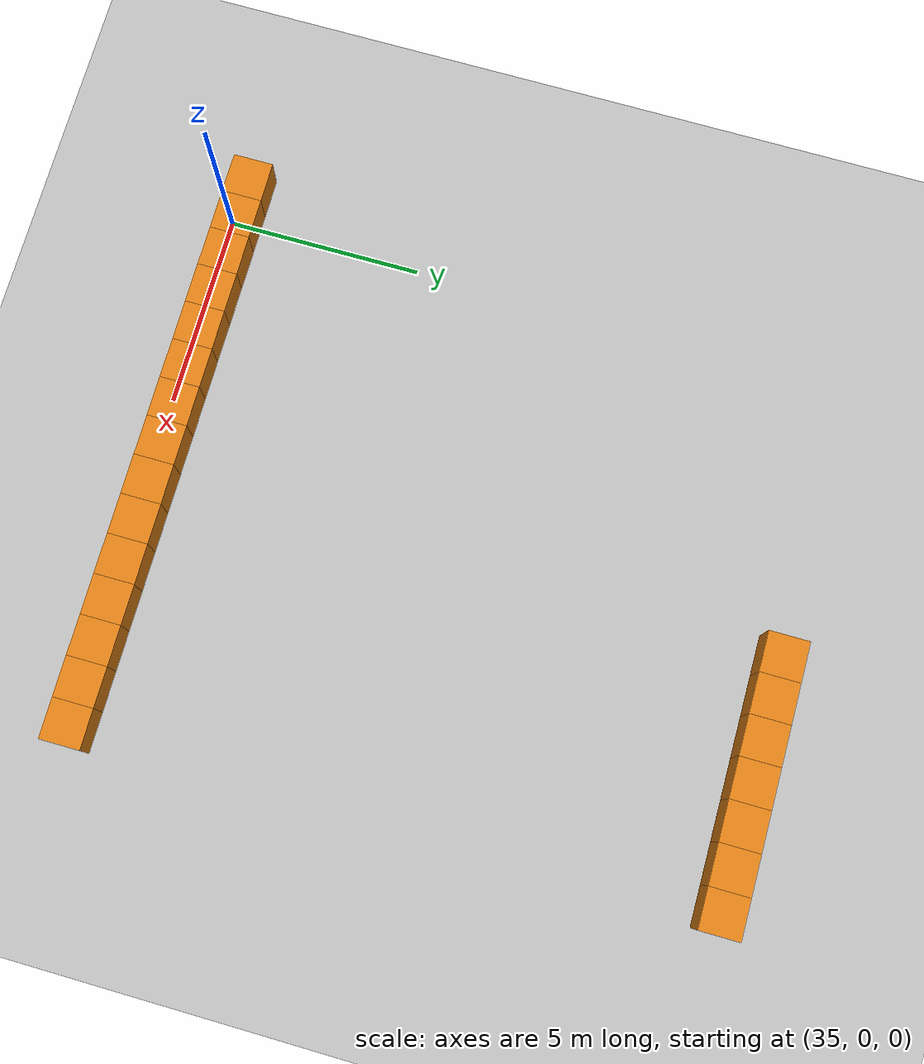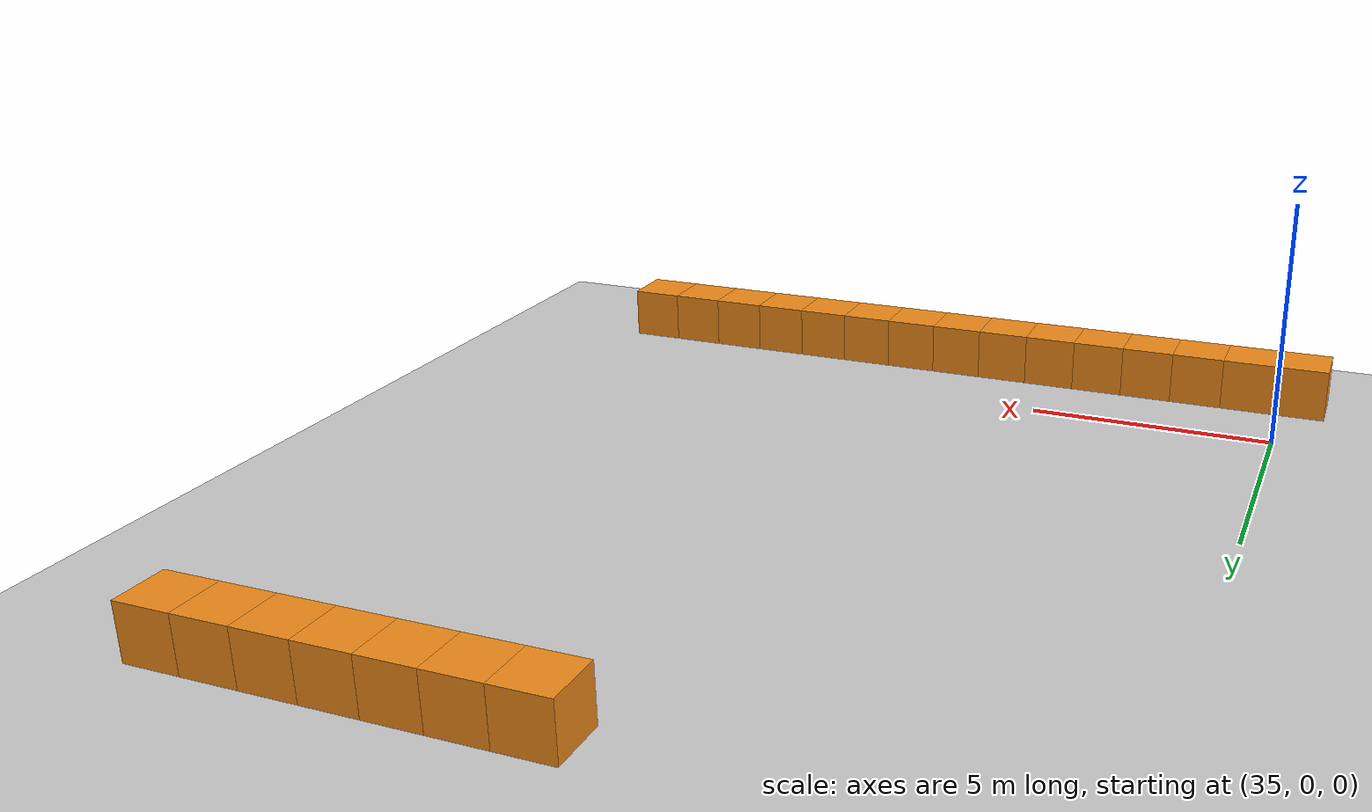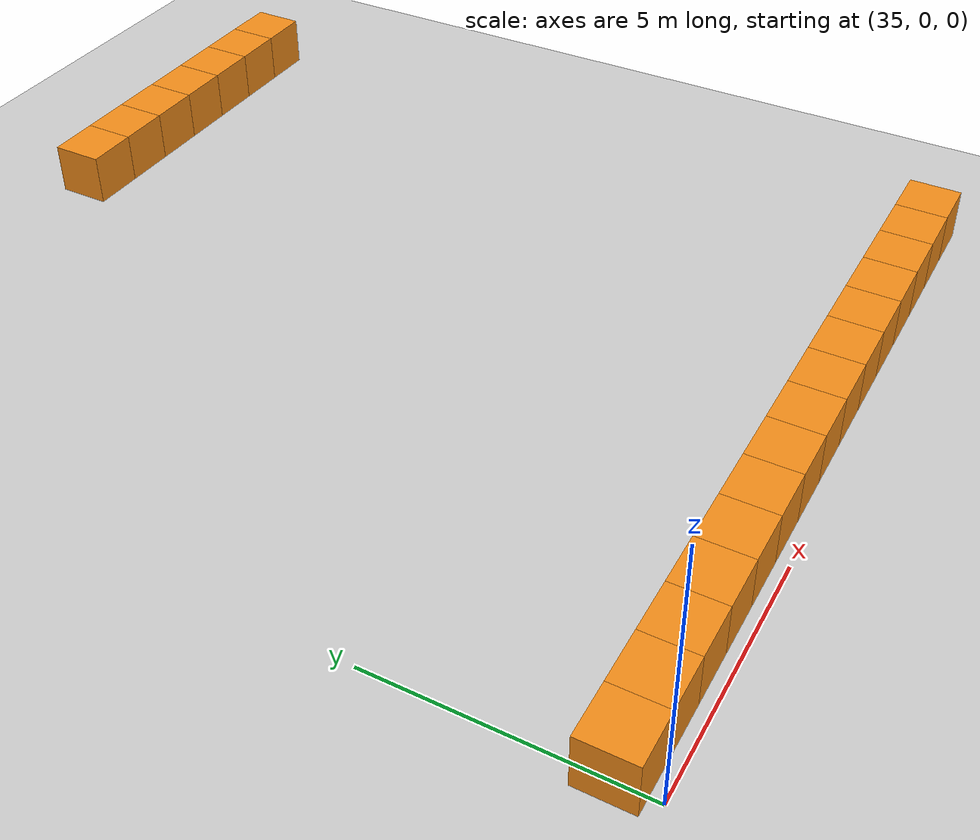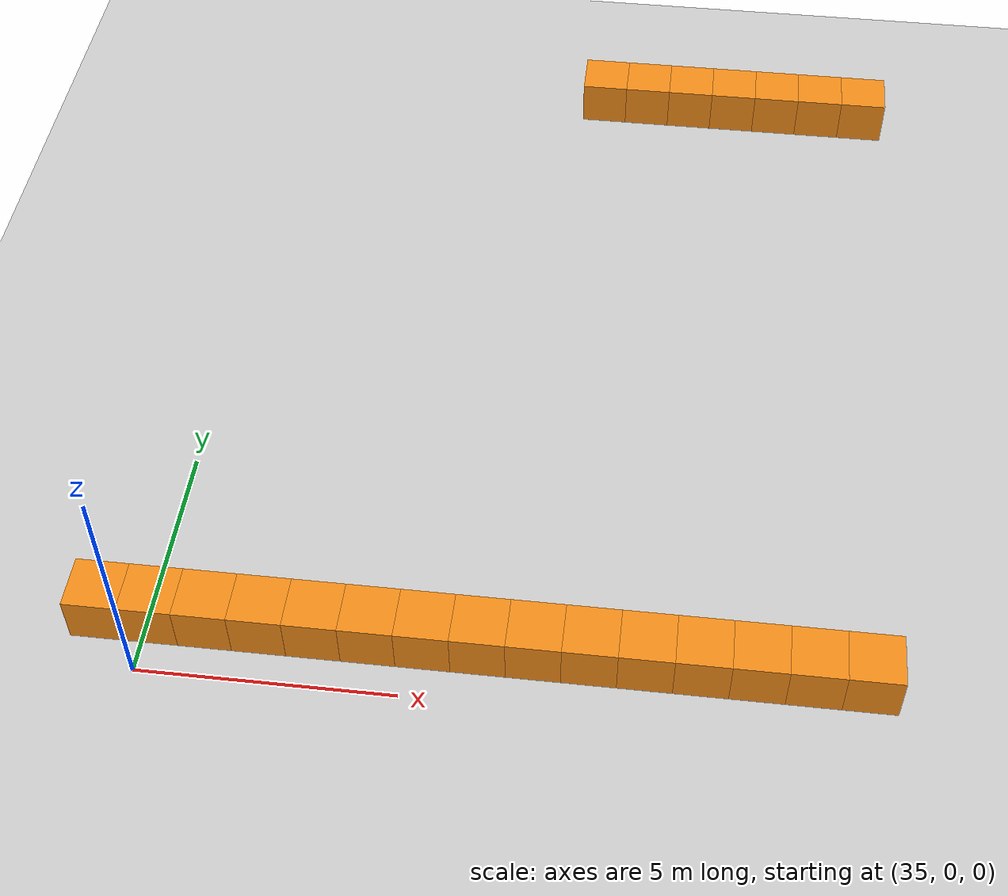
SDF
<sdf version="1.6">
 <world name="default">
  <include><uri>model://ground_plane</uri></include>
  <model name="unit_box_095">
   <pose>34.50     0.50     1.50 0 0 0</pose>
   <static>1</static>
   <link name="link">
    <inertial>
     <mass>5000</mass>
     <inertia><ixx>200</ixx><ixy>0</ixy><ixz>0</ixz><iyy>200</iyy><iyz>0</iyz><izz>200</izz></inertia>
    </inertial>
    <collision name="collision"><geometry><box><size>1 1 1</size></box></geometry></collision>
    <visual name="visual">
     <geometry><box><size>1 1 1</size></box></geometry>
     <material>
      <script><name>Gazebo/Orange</name><uri>file://media/materials/scripts/gazebo.material</uri></script>
     </material>
    </visual>
   </link>
  </model>
  <model name="unit_box_098">
   <pose>35.50     0.50     1.50 0 0 0</pose>
   <static>1</static>
   <link name="link">
    <inertial>
     <mass>5000</mass>
     <inertia><ixx>200</ixx><ixy>0</ixy><ixz>0</ixz><iyy>200</iyy><iyz>0</iyz><izz>200</izz></inertia>
    </inertial>
    <collision name="collision"><geometry><box><size>1 1 1</size></box></geometry></collision>
    <visual name="visual">
     <geometry><box><size>1 1 1</size></box></geometry>
     <material>
      <script><name>Gazebo/Orange</name><uri>file://media/materials/scripts/gazebo.material</uri></script>
     </material>
    </visual>
   </link>
  </model>
  <model name="unit_box_101">
   <pose>36.50     0.50     1.50 0 0 0</pose>
   <static>1</static>
   <link name="link">
    <inertial>
     <mass>5000</mass>
     <inertia><ixx>200</ixx><ixy>0</ixy><ixz>0</ixz><iyy>200</iyy><iyz>0</iyz><izz>200</izz></inertia>
    </inertial>
    <collision name="collision"><geometry><box><size>1 1 1</size></box></geometry></collision>
    <visual name="visual">
     <geometry><box><size>1 1 1</size></box></geometry>
     <material>
      <script><name>Gazebo/Orange</name><uri>file://media/materials/scripts/gazebo.material</uri></script>
     </material>
    </visual>
   </link>
  </model>
  <model name="unit_box_104">
   <pose>37.50     0.50     1.50 0 0 0</pose>
   <static>1</static>
   <link name="link">
    <inertial>
     <mass>5000</mass>
     <inertia><ixx>200</ixx><ixy>0</ixy><ixz>0</ixz><iyy>200</iyy><iyz>0</iyz><izz>200</izz></inertia>
    </inertial>
    <collision name="collision"><geometry><box><size>1 1 1</size></box></geometry></collision>
    <visual name="visual">
     <geometry><box><size>1 1 1</size></box></geometry>
     <material>
      <script><name>Gazebo/Orange</name><uri>file://media/materials/scripts/gazebo.material</uri></script>
     </material>
    </visual>
   </link>
  </model>
  <model name="unit_box_107">
   <pose>38.50     0.50     1.50 0 0 0</pose>
   <static>1</static>
   <link name="link">
    <inertial>
     <mass>5000</mass>
     <inertia><ixx>200</ixx><ixy>0</ixy><ixz>0</ixz><iyy>200</iyy><iyz>0</iyz><izz>200</izz></inertia>
    </inertial>
    <collision name="collision"><geometry><box><size>1 1 1</size></box></geometry></collision>
    <visual name="visual">
     <geometry><box><size>1 1 1</size></box></geometry>
     <material>
      <script><name>Gazebo/Orange</name><uri>file://media/materials/scripts/gazebo.material</uri></script>
     </material>
    </visual>
   </link>
  </model>
  <model name="unit_box_110">
   <pose>39.50     0.50     1.50 0 0 0</pose>
   <static>1</static>
   <link name="link">
    <inertial>
     <mass>5000</mass>
     <inertia><ixx>200</ixx><ixy>0</ixy><ixz>0</ixz><iyy>200</iyy><iyz>0</iyz><izz>200</izz></inertia>
    </inertial>
    <collision name="collision"><geometry><box><size>1 1 1</size></box></geometry></collision>
    <visual name="visual">
     <geometry><box><size>1 1 1</size></box></geometry>
     <material>
      <script><name>Gazebo/Orange</name><uri>file://media/materials/scripts/gazebo.material</uri></script>
     </material>
    </visual>
   </link>
  </model>
  <model name="unit_box_113">
   <pose>40.50     0.50     1.50 0 0 0</pose>
   <static>1</static>
   <link name="link">
    <inertial>
     <mass>5000</mass>
     <inertia><ixx>200</ixx><ixy>0</ixy><ixz>0</ixz><iyy>200</iyy><iyz>0</iyz><izz>200</izz></inertia>
    </inertial>
    <collision name="collision"><geometry><box><size>1 1 1</size></box></geometry></collision>
    <visual name="visual">
     <geometry><box><size>1 1 1</size></box></geometry>
     <material>
      <script><name>Gazebo/Orange</name><uri>file://media/materials/scripts/gazebo.material</uri></script>
     </material>
    </visual>
   </link>
  </model>
  <model name="unit_box_116">
   <pose>41.50     0.50     1.50 0 0 0</pose>
   <static>1</static>
   <link name="link">
    <inertial>
     <mass>5000</mass>
     <inertia><ixx>200</ixx><ixy>0</ixy><ixz>0</ixz><iyy>200</iyy><iyz>0</iyz><izz>200</izz></inertia>
    </inertial>
    <collision name="collision"><geometry><box><size>1 1 1</size></box></geometry></collision>
    <visual name="visual">
     <geometry><box><size>1 1 1</size></box></geometry>
     <material>
      <script><name>Gazebo/Orange</name><uri>file://media/materials/scripts/gazebo.material</uri></script>
     </material>
    </visual>
   </link>
  </model>
  <model name="unit_box_119">
   <pose>42.50     0.50     1.50 0 0 0</pose>
   <static>1</static>
   <link name="link">
    <inertial>
     <mass>5000</mass>
     <inertia><ixx>200</ixx><ixy>0</ixy><ixz>0</ixz><iyy>200</iyy><iyz>0</iyz><izz>200</izz></inertia>
    </inertial>
    <collision name="collision"><geometry><box><size>1 1 1</size></box></geometry></collision>
    <visual name="visual">
     <geometry><box><size>1 1 1</size></box></geometry>
     <material>
      <script><name>Gazebo/Orange</name><uri>file://media/materials/scripts/gazebo.material</uri></script>
     </material>
    </visual>
   </link>
  </model>
  <model name="unit_box_120">
   <pose>42.50    16.00     1.50 0 0 0</pose>
   <static>1</static>
   <link name="link">
    <inertial>
     <mass>5000</mass>
     <inertia><ixx>200</ixx><ixy>0</ixy><ixz>0</ixz><iyy>200</iyy><iyz>0</iyz><izz>200</izz></inertia>
    </inertial>
    <collision name="collision"><geometry><box><size>1 1 1</size></box></geometry></collision>
    <visual name="visual">
     <geometry><box><size>1 1 1</size></box></geometry>
     <material>
      <script><name>Gazebo/Orange</name><uri>file://media/materials/scripts/gazebo.material</uri></script>
     </material>
    </visual>
   </link>
  </model>
  <model name="unit_box_123">
   <pose>43.50     0.50     1.50 0 0 0</pose>
   <static>1</static>
   <link name="link">
    <inertial>
     <mass>5000</mass>
     <inertia><ixx>200</ixx><ixy>0</ixy><ixz>0</ixz><iyy>200</iyy><iyz>0</iyz><izz>200</izz></inertia>
    </inertial>
    <collision name="collision"><geometry><box><size>1 1 1</size></box></geometry></collision>
    <visual name="visual">
     <geometry><box><size>1 1 1</size></box></geometry>
     <material>
      <script><name>Gazebo/Orange</name><uri>file://media/materials/scripts/gazebo.material</uri></script>
     </material>
    </visual>
   </link>
  </model>
  <model name="unit_box_124">
   <pose>43.50    16.00     1.50 0 0 0</pose>
   <static>1</static>
   <link name="link">
    <inertial>
     <mass>5000</mass>
     <inertia><ixx>200</ixx><ixy>0</ixy><ixz>0</ixz><iyy>200</iyy><iyz>0</iyz><izz>200</izz></inertia>
    </inertial>
    <collision name="collision"><geometry><box><size>1 1 1</size></box></geometry></collision>
    <visual name="visual">
     <geometry><box><size>1 1 1</size></box></geometry>
     <material>
      <script><name>Gazebo/Orange</name><uri>file://media/materials/scripts/gazebo.material</uri></script>
     </material>
    </visual>
   </link>
  </model>
  <model name="unit_box_126">
   <pose>44.50     0.50     1.50 0 0 0</pose>
   <static>1</static>
   <link name="link">
    <inertial>
     <mass>5000</mass>
     <inertia><ixx>200</ixx><ixy>0</ixy><ixz>0</ixz><iyy>200</iyy><iyz>0</iyz><izz>200</izz></inertia>
    </inertial>
    <collision name="collision"><geometry><box><size>1 1 1</size></box></geometry></collision>
    <visual name="visual">
     <geometry><box><size>1 1 1</size></box></geometry>
     <material>
      <script><name>Gazebo/Orange</name><uri>file://media/materials/scripts/gazebo.material</uri></script>
     </material>
    </visual>
   </link>
  </model>
  <model name="unit_box_127">
   <pose>44.50    16.00     1.50 0 0 0</pose>
   <static>1</static>
   <link name="link">
    <inertial>
     <mass>5000</mass>
     <inertia><ixx>200</ixx><ixy>0</ixy><ixz>0</ixz><iyy>200</iyy><iyz>0</iyz><izz>200</izz></inertia>
    </inertial>
    <collision name="collision"><geometry><box><size>1 1 1</size></box></geometry></collision>
    <visual name="visual">
     <geometry><box><size>1 1 1</size></box></geometry>
     <material>
      <script><name>Gazebo/Orange</name><uri>file://media/materials/scripts/gazebo.material</uri></script>
     </material>
    </visual>
   </link>
  </model>
  <model name="unit_box_129">
   <pose>45.50     0.50     1.50 0 0 0</pose>
   <static>1</static>
   <link name="link">
    <inertial>
     <mass>5000</mass>
     <inertia><ixx>200</ixx><ixy>0</ixy><ixz>0</ixz><iyy>200</iyy><iyz>0</iyz><izz>200</izz></inertia>
    </inertial>
    <collision name="collision"><geometry><box><size>1 1 1</size></box></geometry></collision>
    <visual name="visual">
     <geometry><box><size>1 1 1</size></box></geometry>
     <material>
      <script><name>Gazebo/Orange</name><uri>file://media/materials/scripts/gazebo.material</uri></script>
     </material>
    </visual>
   </link>
  </model>
  <model name="unit_box_130">
   <pose>45.50    16.00     1.50 0 0 0</pose>
   <static>1</static>
   <link name="link">
    <inertial>
     <mass>5000</mass>
     <inertia><ixx>200</ixx><ixy>0</ixy><ixz>0</ixz><iyy>200</iyy><iyz>0</iyz><izz>200</izz></inertia>
    </inertial>
    <collision name="collision"><geometry><box><size>1 1 1</size></box></geometry></collision>
    <visual name="visual">
     <geometry><box><size>1 1 1</size></box></geometry>
     <material>
      <script><name>Gazebo/Orange</name><uri>file://media/materials/scripts/gazebo.material</uri></script>
     </material>
    </visual>
   </link>
  </model>
  <model name="unit_box_132">
   <pose>46.50     0.50     1.50 0 0 0</pose>
   <static>1</static>
   <link name="link">
    <inertial>
     <mass>5000</mass>
     <inertia><ixx>200</ixx><ixy>0</ixy><ixz>0</ixz><iyy>200</iyy><iyz>0</iyz><izz>200</izz></inertia>
    </inertial>
    <collision name="collision"><geometry><box><size>1 1 1</size></box></geometry></collision>
    <visual name="visual">
     <geometry><box><size>1 1 1</size></box></geometry>
     <material>
      <script><name>Gazebo/Orange</name><uri>file://media/materials/scripts/gazebo.material</uri></script>
     </material>
    </visual>
   </link>
  </model>
  <model name="unit_box_133">
   <pose>46.50    16.00     1.50 0 0 0</pose>
   <static>1</static>
   <link name="link">
    <inertial>
     <mass>5000</mass>
     <inertia><ixx>200</ixx><ixy>0</ixy><ixz>0</ixz><iyy>200</iyy><iyz>0</iyz><izz>200</izz></inertia>
    </inertial>
    <collision name="collision"><geometry><box><size>1 1 1</size></box></geometry></collision>
    <visual name="visual">
     <geometry><box><size>1 1 1</size></box></geometry>
     <material>
      <script><name>Gazebo/Orange</name><uri>file://media/materials/scripts/gazebo.material</uri></script>
     </material>
    </visual>
   </link>
  </model>
  <model name="unit_box_135">
   <pose>47.50     0.50     1.50 0 0 0</pose>
   <static>1</static>
   <link name="link">
    <inertial>
     <mass>5000</mass>
     <inertia><ixx>200</ixx><ixy>0</ixy><ixz>0</ixz><iyy>200</iyy><iyz>0</iyz><izz>200</izz></inertia>
    </inertial>
    <collision name="collision"><geometry><box><size>1 1 1</size></box></geometry></collision>
    <visual name="visual">
     <geometry><box><size>1 1 1</size></box></geometry>
     <material>
      <script><name>Gazebo/Orange</name><uri>file://media/materials/scripts/gazebo.material</uri></script>
     </material>
    </visual>
   </link>
  </model>
  <model name="unit_box_136">
   <pose>47.50    16.00     1.50 0 0 0</pose>
   <static>1</static>
   <link name="link">
    <inertial>
     <mass>5000</mass>
     <inertia><ixx>200</ixx><ixy>0</ixy><ixz>0</ixz><iyy>200</iyy><iyz>0</iyz><izz>200</izz></inertia>
    </inertial>
    <collision name="collision"><geometry><box><size>1 1 1</size></box></geometry></collision>
    <visual name="visual">
     <geometry><box><size>1 1 1</size></box></geometry>
     <material>
      <script><name>Gazebo/Orange</name><uri>file://media/materials/scripts/gazebo.material</uri></script>
     </material>
    </visual>
   </link>
  </model>
  <model name="unit_box_138">
   <pose>48.50     0.50     1.50 0 0 0</pose>
   <static>1</static>
   <link name="link">
    <inertial>
     <mass>5000</mass>
     <inertia><ixx>200</ixx><ixy>0</ixy><ixz>0</ixz><iyy>200</iyy><iyz>0</iyz><izz>200</izz></inertia>
    </inertial>
    <collision name="collision"><geometry><box><size>1 1 1</size></box></geometry></collision>
    <visual name="visual">
     <geometry><box><size>1 1 1</size></box></geometry>
     <material>
      <script><name>Gazebo/Orange</name><uri>file://media/materials/scripts/gazebo.material</uri></script>
     </material>
    </visual>
   </link>
  </model>
  <model name="unit_box_139">
   <pose>48.50    16.00     1.50 0 0 0</pose>
   <static>1</static>
   <link name="link">
    <inertial>
     <mass>5000</mass>
     <inertia><ixx>200</ixx><ixy>0</ixy><ixz>0</ixz><iyy>200</iyy><iyz>0</iyz><izz>200</izz></inertia>
    </inertial>
    <collision name="collision"><geometry><box><size>1 1 1</size></box></geometry></collision>
    <visual name="visual">
     <geometry><box><size>1 1 1</size></box></geometry>
     <material>
      <script><name>Gazebo/Orange</name><uri>file://media/materials/scripts/gazebo.material</uri></script>
     </material>
    </visual>
   </link>
  </model>
 </world>
</sdf>
